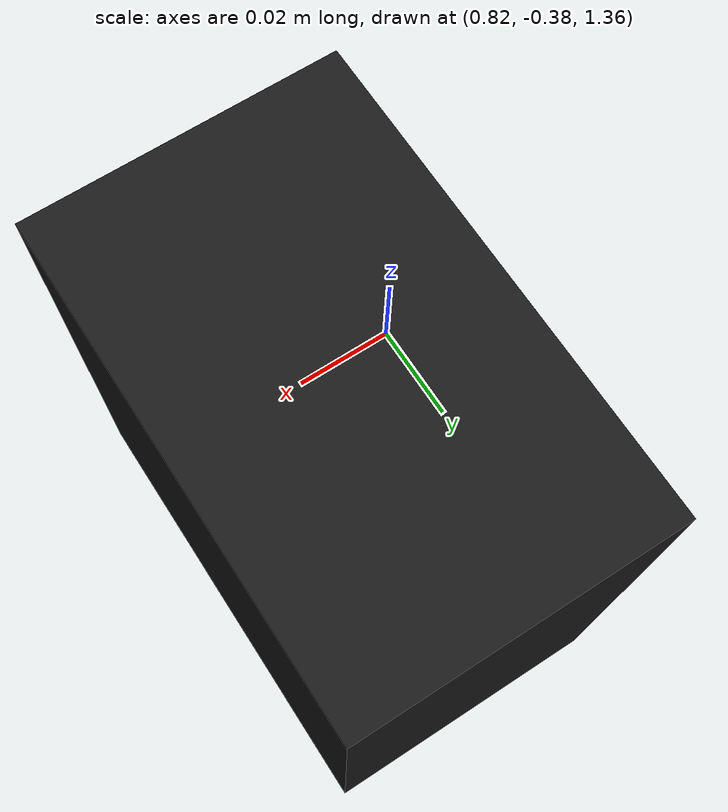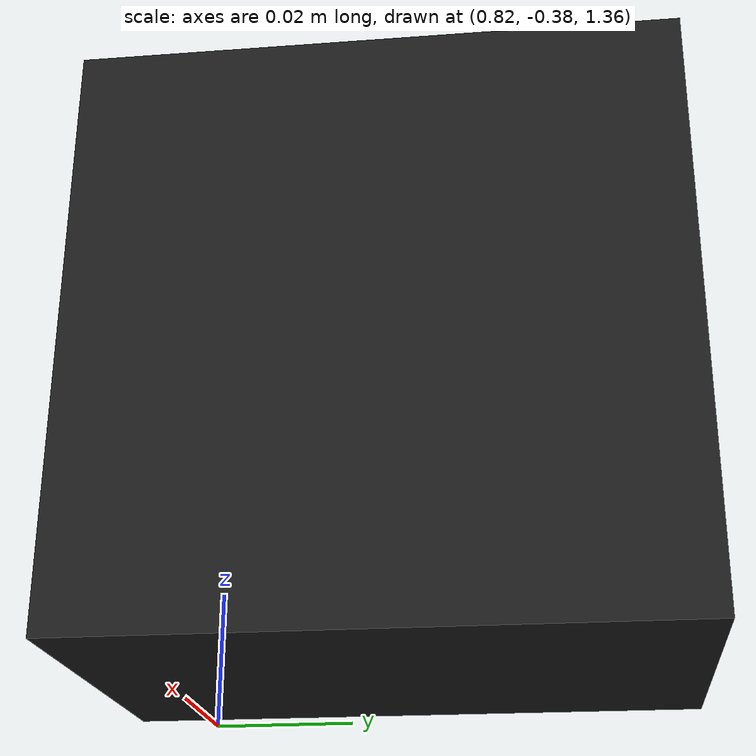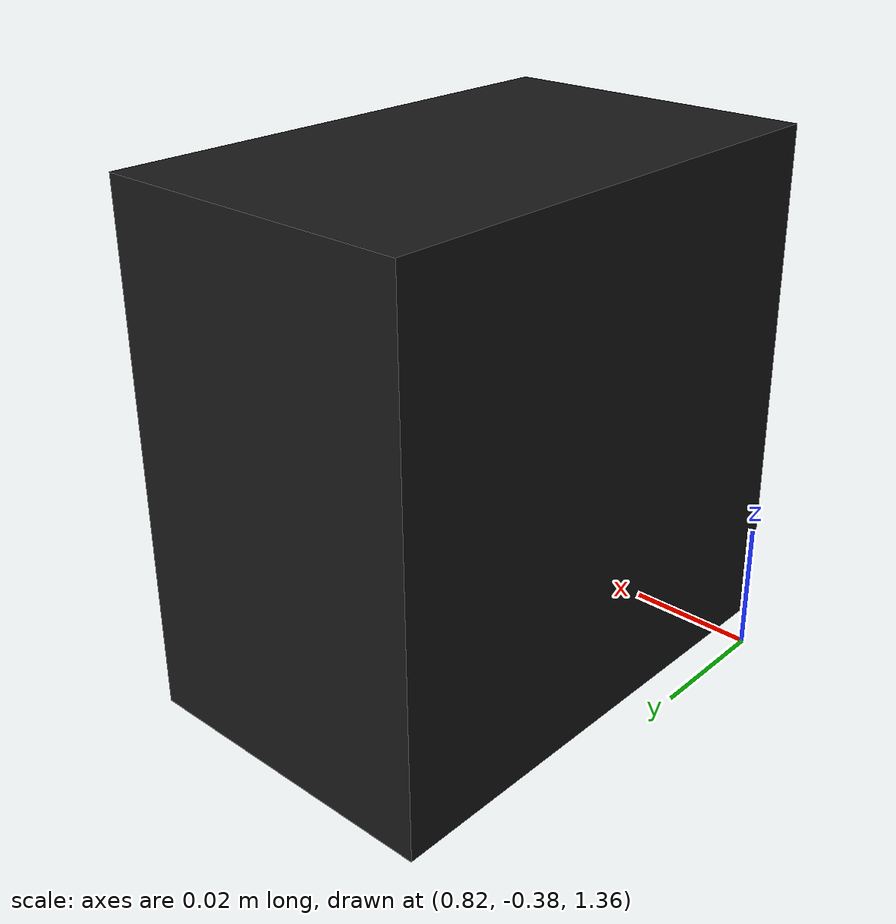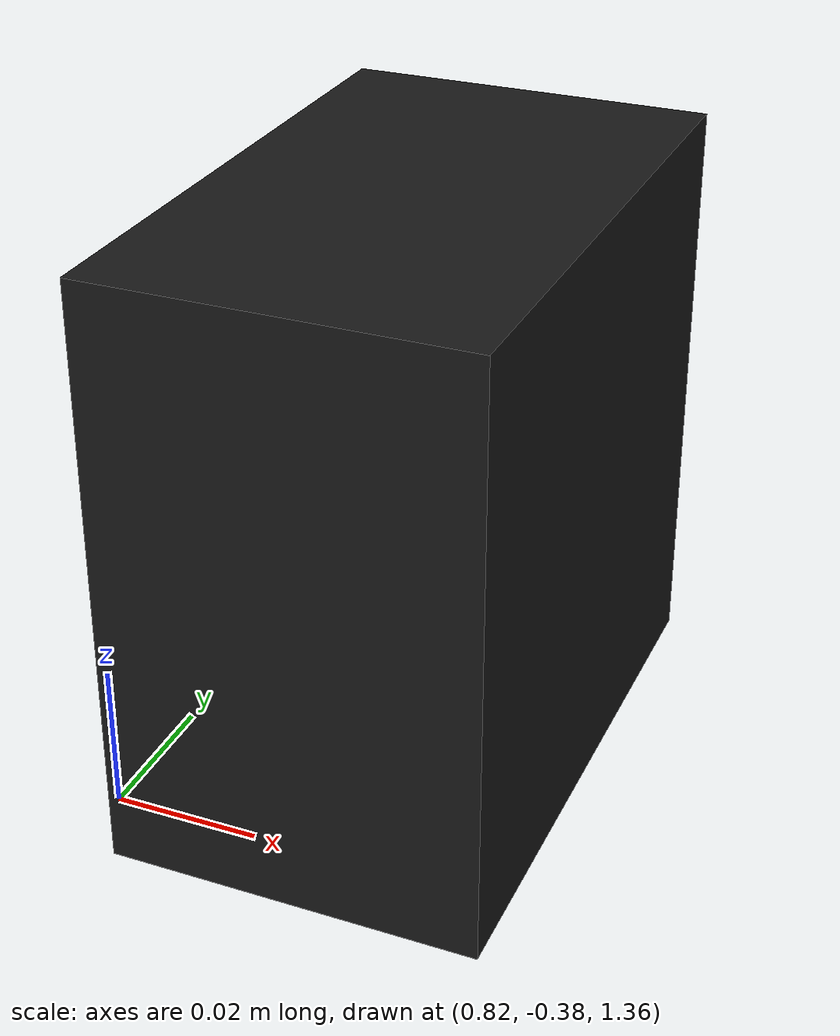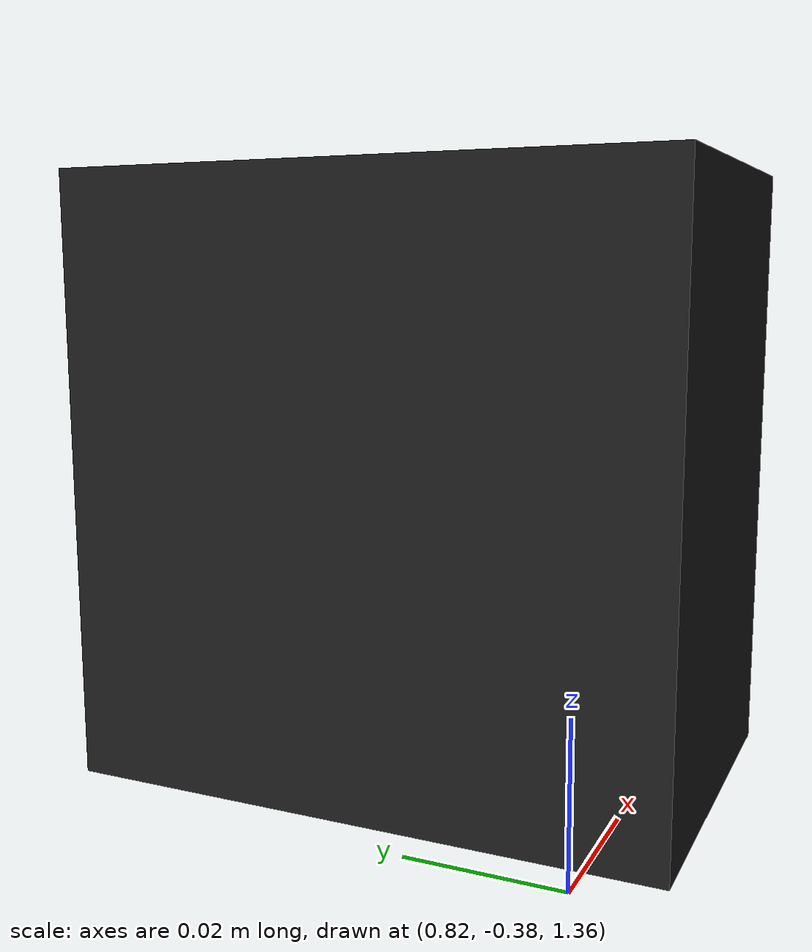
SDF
<?xml version="1.0"?>
<sdf version="1.9">
  <model name="runtime_rgbd_camera">
    <static>true</static>

    <pose>0.85 -0.35 1.40 0 -1.5708 0</pose>

    <link name="camera_link">

      <visual name="camera_visual">
        <geometry>
          <box>
            <size>0.08 0.08 0.05</size>
          </box>
        </geometry>
        <material>
          <ambient>0.1 0.1 0.1 1</ambient>
          <diffuse>0.1 0.1 0.1 1</diffuse>
        </material>
      </visual>

      <sensor name="rgbd" type="rgbd_camera">

        <topic>/runtime/rgbd</topic>

        <update_rate>15</update_rate>
        <always_on>true</always_on>
        <visualize>true</visualize>

        <camera>
          <horizontal_fov>1.047</horizontal_fov>

          <image>
            <width>640</width>
            <height>480</height>
            <format>R8G8B8</format>
          </image>

          <clip>
            <near>0.05</near>
            <far>3.0</far>
          </clip>

          <depth_camera>
            <clip>
              <near>0.05</near>
              <far>3.0</far>
            </clip>
          </depth_camera>

        </camera>

      </sensor>

    </link>
  </model>
</sdf>
